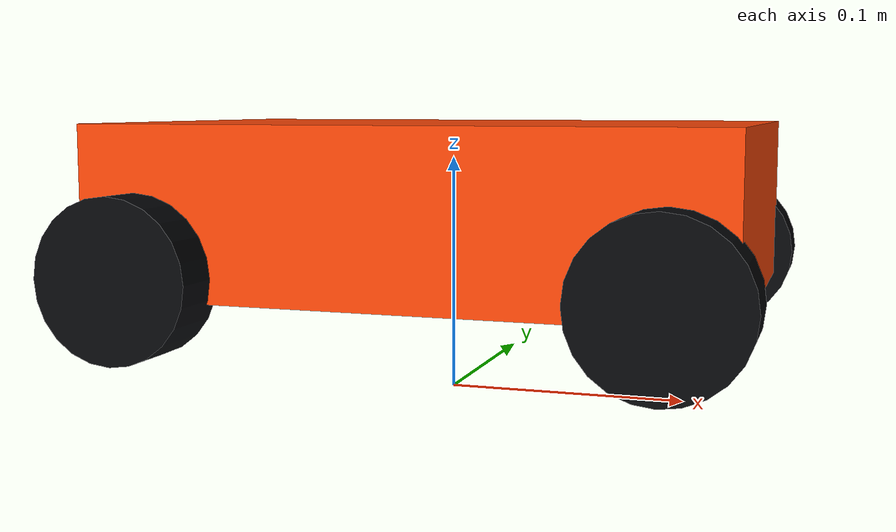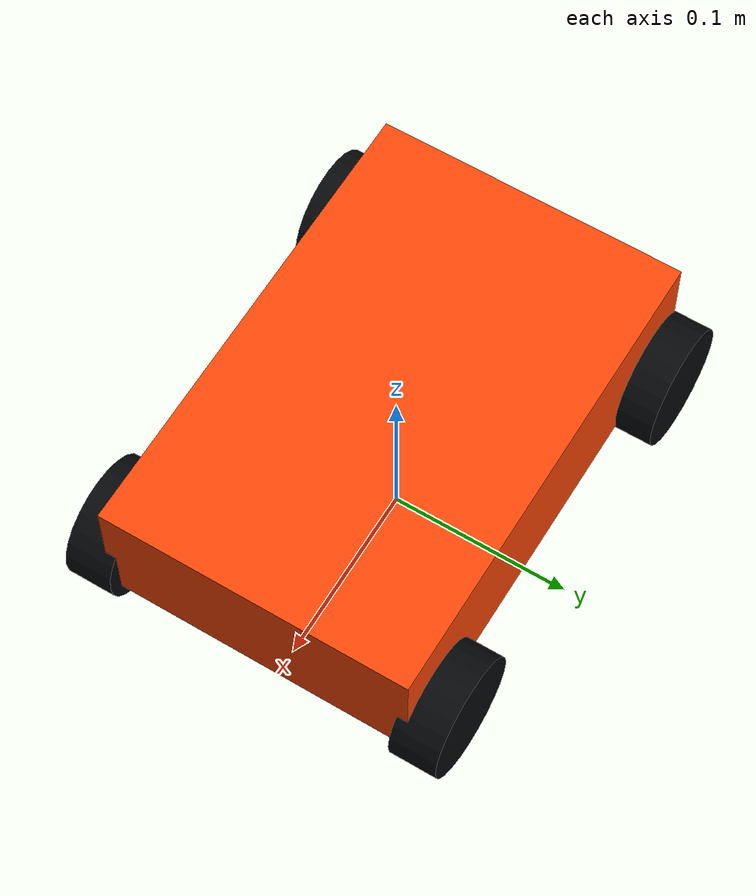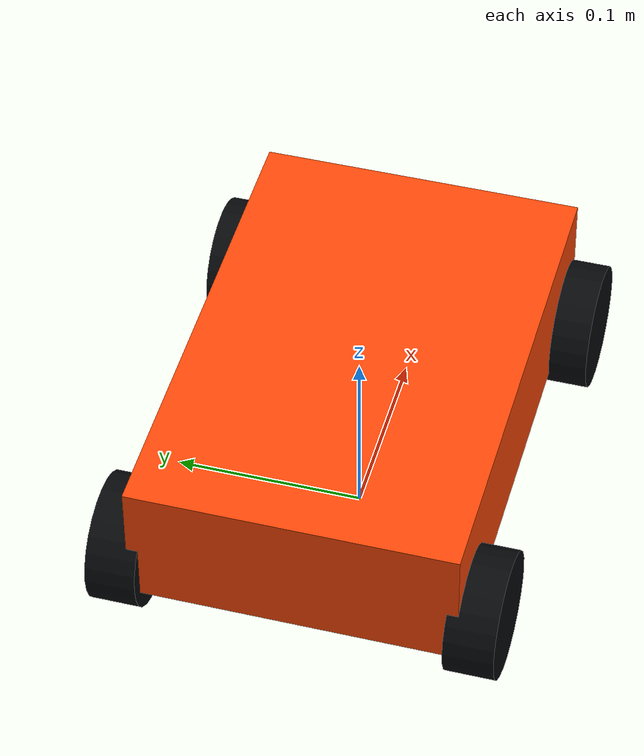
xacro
<?xml version="1.0"?>
<robot xmlns:xacro="http://www.ros.org/wiki/xacro" name="pulso_openbot">
  <xacro:property name="wheel_radius" value="0.033"/>
  <xacro:property name="wheel_width" value="0.026"/>
  <xacro:property name="wheel_x" value="0.105"/>
  <xacro:property name="wheel_y" value="0.092"/>

  <material name="pulso_black"><color rgba="0.025 0.03 0.04 1"/></material>
  <material name="pulso_orange"><color rgba="1.0 0.28 0.03 1"/></material>

  <link name="base_footprint"/>
  <joint name="base_footprint_to_base" type="fixed">
    <parent link="base_footprint"/>
    <child link="base_link"/>
    <origin xyz="0 0 0.055"/>
  </joint>

  <link name="base_link">
    <visual>
      <origin xyz="0 0 0.025"/>
      <geometry><box size="0.26 0.17 0.07"/></geometry>
      <material name="pulso_orange"/>
    </visual>
    <collision>
      <origin xyz="0 0 0.025"/>
      <geometry><box size="0.26 0.17 0.07"/></geometry>
    </collision>
    <inertial>
      <origin xyz="0 0 0.025"/>
      <mass value="1.55"/>
      <inertia ixx="0.0048" ixy="0" ixz="0" iyy="0.0092" iyz="0" izz="0.0122"/>
    </inertial>
  </link>

  <xacro:macro name="wheel" params="name x y">
    <link name="${name}">
      <visual>
        <origin rpy="1.570796 0 0"/>
        <geometry><cylinder radius="${wheel_radius}" length="${wheel_width}"/></geometry>
        <material name="pulso_black"/>
      </visual>
      <collision>
        <origin rpy="1.570796 0 0"/>
        <geometry><cylinder radius="${wheel_radius}" length="${wheel_width}"/></geometry>
      </collision>
      <inertial>
        <mass value="0.08"/>
        <inertia ixx="0.00005" ixy="0" ixz="0" iyy="0.00005" iyz="0" izz="0.00008"/>
      </inertial>
    </link>
    <joint name="${name}_joint" type="continuous">
      <parent link="base_link"/><child link="${name}"/>
      <origin xyz="${x} ${y} 0"/><axis xyz="0 1 0"/>
    </joint>
  </xacro:macro>

  <xacro:wheel name="front_left_wheel" x="${wheel_x}" y="${wheel_y}"/>
  <xacro:wheel name="rear_left_wheel" x="-${wheel_x}" y="${wheel_y}"/>
  <xacro:wheel name="front_right_wheel" x="${wheel_x}" y="-${wheel_y}"/>
  <xacro:wheel name="rear_right_wheel" x="-${wheel_x}" y="-${wheel_y}"/>

  <link name="phone_mount"/>
  <joint name="base_to_phone_mount" type="fixed">
    <parent link="base_link"/><child link="phone_mount"/>
    <origin xyz="0.055 0 0.155" rpy="0 0 0"/>
  </joint>

  <link name="phone_imu_link"/>
  <joint name="phone_mount_to_imu" type="fixed">
    <parent link="phone_mount"/><child link="phone_imu_link"/>
  </joint>

  <link name="phone_camera_link"/>
  <joint name="phone_mount_to_camera" type="fixed">
    <parent link="phone_mount"/><child link="phone_camera_link"/>
    <!-- Rear camera position on an upright, landscape-mounted S25 Ultra. -->
    <origin xyz="0.006 -0.054 0.023"/>
  </joint>

  <link name="phone_camera_optical_frame"/>
  <joint name="camera_to_optical" type="fixed">
    <parent link="phone_camera_link"/><child link="phone_camera_optical_frame"/>
    <origin rpy="-1.570796 0 -1.570796"/>
  </joint>

  <link name="sonar_front_link"/>
  <joint name="base_to_sonar" type="fixed">
    <parent link="base_link"/><child link="sonar_front_link"/>
    <origin xyz="0.135 0 0.055"/>
  </joint>

  <link name="bumper_link"/>
  <joint name="base_to_bumper" type="fixed">
    <parent link="base_link"/><child link="bumper_link"/>
    <origin xyz="0.145 0 0.035"/>
  </joint>
</robot>
